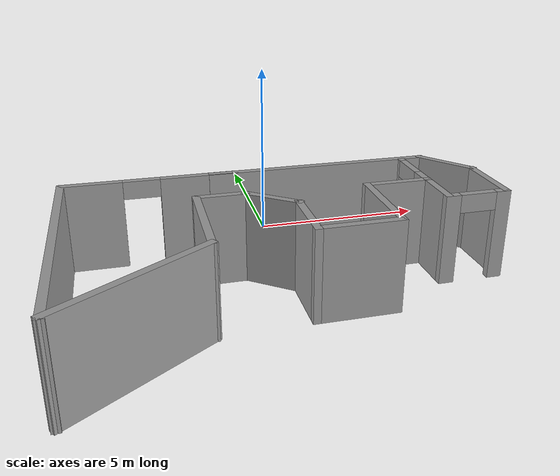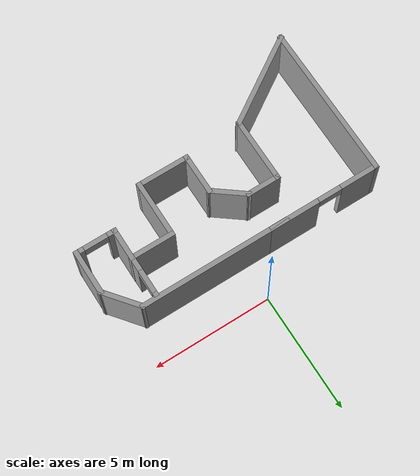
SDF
<?xml version='1.0'?>
<sdf version='1.4'>
  <model name='house_test'>
    <link name='Wall_0'>
      <collision name='Wall_0_Collision'>
        <geometry>
          <box>
            <size>6.42 0.2 2.5</size>
          </box>
        </geometry>
        <pose>0 0 1.25 0 -0 0</pose>
      </collision>
      <visual name='Wall_0_Visual'>
        <pose>0 0 1.25 0 -0 0</pose>
        <geometry>
          <box>
            <size>6.42 0.2 2.5</size>
          </box>
        </geometry>
        <material>
          <script>
            <uri>file://media/materials/scripts/gazebo.material</uri>
            <name>Gazebo/Grey</name>
          </script>
        </material>
      </visual>
      <velocity_decay>
        <linear>0</linear>
        <angular>0</angular>
      </velocity_decay>
      <pose>1.32 -1.61 0 0 -0 0</pose>
    </link>
    <link name='Wall_1'>
      <collision name='Wall_1_Collision'>
        <geometry>
          <box>
            <size>1.83049 0.2 2.5</size>
          </box>
        </geometry>
        <pose>0 0 1.25 0 -0 0</pose>
      </collision>
      <visual name='Wall_1_Visual'>
        <pose>0 0 1.25 0 -0 0</pose>
        <geometry>
          <box>
            <size>1.83049 0.2 2.5</size>
          </box>
        </geometry>
        <material>
          <script>
            <uri>file://media/materials/scripts/gazebo.material</uri>
            <name>Gazebo/Grey</name>
          </script>
        </material>
      </visual>
      <velocity_decay>
        <linear>0</linear>
        <angular>0</angular>
      </velocity_decay>
      <pose>4.935 -2.25 0 0 0 -0.90276</pose>
    </link>
    <link name='Wall_10'>
      <collision name='Wall_10_Collision'>
        <geometry>
          <box>
            <size>1.4808 0.2 2.5</size>
          </box>
        </geometry>
        <pose>0 0 1.25 0 -0 0</pose>
      </collision>
      <visual name='Wall_10_Visual'>
        <pose>0 0 1.25 0 -0 0</pose>
        <geometry>
          <box>
            <size>1.4808 0.2 2.5</size>
          </box>
        </geometry>
        <material>
          <script>
            <uri>file://media/materials/scripts/gazebo.material</uri>
            <name>Gazebo/Grey</name>
          </script>
        </material>
      </visual>
      <velocity_decay>
        <linear>0</linear>
        <angular>0</angular>
      </velocity_decay>
      <pose>-1.8069 -3.22937 0 0 -0 3.14159</pose>
    </link>
    <link name='Wall_11'>
      <collision name='Wall_11_Collision'>
        <geometry>
          <box>
            <size>2.85488 0.2 2.5</size>
          </box>
        </geometry>
        <pose>0 0 1.25 0 -0 0</pose>
      </collision>
      <visual name='Wall_11_Visual'>
        <pose>0 0 1.25 0 -0 0</pose>
        <geometry>
          <box>
            <size>2.85488 0.2 2.5</size>
          </box>
        </geometry>
        <material>
          <script>
            <uri>file://media/materials/scripts/gazebo.material</uri>
            <name>Gazebo/Grey</name>
          </script>
        </material>
      </visual>
      <velocity_decay>
        <linear>0</linear>
        <angular>0</angular>
      </velocity_decay>
      <pose>-2.4473 -4.55681 0 0 0 -1.5708</pose>
    </link>
    <link name='Wall_12'>
      <collision name='Wall_12_Collision'>
        <geometry>
          <box>
            <size>4.25102 0.2 2.5</size>
          </box>
        </geometry>
        <pose>0 0 1.25 0 -0 0</pose>
      </collision>
      <visual name='Wall_12_Visual'>
        <pose>0 0 1.25 0 -0 0</pose>
        <geometry>
          <box>
            <size>4.25102 0.2 2.5</size>
          </box>
        </geometry>
        <material>
          <script>
            <uri>file://media/materials/scripts/gazebo.material</uri>
            <name>Gazebo/Grey</name>
          </script>
        </material>
      </visual>
      <velocity_decay>
        <linear>0</linear>
        <angular>0</angular>
      </velocity_decay>
      <pose>-4.13682 -7.00149 0 0 0 -2.55733</pose>
    </link>
    <link name='Wall_13'>
      <collision name='Wall_13_Collision'>
        <geometry>
          <box>
            <size>6.71335 0.2 2.5</size>
          </box>
        </geometry>
        <pose>0 0 1.25 0 -0 0</pose>
      </collision>
      <visual name='Wall_13_Visual'>
        <pose>0 0 1.25 0 -0 0</pose>
        <geometry>
          <box>
            <size>6.71335 0.2 2.5</size>
          </box>
        </geometry>
        <material>
          <script>
            <uri>file://media/materials/scripts/gazebo.material</uri>
            <name>Gazebo/Grey</name>
          </script>
        </material>
      </visual>
      <velocity_decay>
        <linear>0</linear>
        <angular>0</angular>
      </velocity_decay>
      <pose>-5.82633 -4.86205 0 0 -0 1.5708</pose>
    </link>
    <link name='Wall_14'>
      <pose>-3.50013 -1.60538 0 0 -0 0</pose>
      <visual name='Wall_14_Visual_0'>
        <pose>-1.57435 0 1.25 0 -0 0</pose>
        <geometry>
          <box>
            <size>1.70369 0.2 2.5</size>
          </box>
        </geometry>
        <material>
          <script>
            <uri>file://media/materials/scripts/gazebo.material</uri>
            <name>Gazebo/Grey</name>
          </script>
        </material>
      </visual>
      <collision name='Wall_14_Collision_0'>
        <geometry>
          <box>
            <size>1.70369 0.2 2.5</size>
          </box>
        </geometry>
        <pose>-1.57435 0 1.25 0 -0 0</pose>
      </collision>
      <visual name='Wall_14_Visual_1'>
        <pose>1.35184 0 1.25 0 -0 0</pose>
        <geometry>
          <box>
            <size>2.1487 0.2 2.5</size>
          </box>
        </geometry>
        <material>
          <script>
            <uri>file://media/materials/scripts/gazebo.material</uri>
            <name>Gazebo/Grey</name>
          </script>
        </material>
      </visual>
      <collision name='Wall_14_Collision_1'>
        <geometry>
          <box>
            <size>2.1487 0.2 2.5</size>
          </box>
        </geometry>
        <pose>1.35184 0 1.25 0 -0 0</pose>
      </collision>
      <visual name='Wall_14_Visual_2'>
        <pose>-0.222506 0 2.25 0 -0 0</pose>
        <geometry>
          <box>
            <size>1 0.2 0.5</size>
          </box>
        </geometry>
        <material>
          <script>
            <uri>file://media/materials/scripts/gazebo.material</uri>
            <name>Gazebo/Grey</name>
          </script>
        </material>
      </visual>
      <collision name='Wall_14_Collision_2'>
        <geometry>
          <box>
            <size>1 0.2 0.5</size>
          </box>
        </geometry>
        <pose>-0.222506 0 2.25 0 -0 0</pose>
      </collision>
    </link>
    <link name='Wall_16'>
      <pose>3.80255 -2.48806 0 0 -0 1.5708</pose>
      <visual name='Wall_16_Visual_0'>
        <pose>-0.590607 0 1.25 0 -0 0</pose>
        <geometry>
          <box>
            <size>0.497668 0.2 2.5</size>
          </box>
        </geometry>
        <material>
          <script>
            <uri>file://media/materials/scripts/gazebo.material</uri>
            <name>Gazebo/Grey</name>
          </script>
        </material>
      </visual>
      <collision name='Wall_16_Collision_0'>
        <geometry>
          <box>
            <size>0.497668 0.2 2.5</size>
          </box>
        </geometry>
        <pose>-0.590607 0 1.25 0 -0 0</pose>
      </collision>
      <visual name='Wall_16_Visual_1'>
        <pose>0.748834 0 1.25 0 -0 0</pose>
        <geometry>
          <box>
            <size>0.181214 0.2 2.5</size>
          </box>
        </geometry>
        <material>
          <script>
            <uri>file://media/materials/scripts/gazebo.material</uri>
            <name>Gazebo/Grey</name>
          </script>
        </material>
      </visual>
      <collision name='Wall_16_Collision_1'>
        <geometry>
          <box>
            <size>0.181214 0.2 2.5</size>
          </box>
        </geometry>
        <pose>0.748834 0 1.25 0 -0 0</pose>
      </collision>
      <visual name='Wall_16_Visual_2'>
        <pose>0.158227 0 2.25 0 -0 0</pose>
        <geometry>
          <box>
            <size>1 0.2 0.5</size>
          </box>
        </geometry>
        <material>
          <script>
            <uri>file://media/materials/scripts/gazebo.material</uri>
            <name>Gazebo/Grey</name>
          </script>
        </material>
      </visual>
      <collision name='Wall_16_Collision_2'>
        <geometry>
          <box>
            <size>1 0.2 0.5</size>
          </box>
        </geometry>
        <pose>0.158227 0 2.25 0 -0 0</pose>
      </collision>
    </link>
    <link name='Wall_2'>
      <collision name='Wall_2_Collision'>
        <geometry>
          <box>
            <size>1.97 0.2 2.5</size>
          </box>
        </geometry>
        <pose>0 0 1.25 0 -0 0</pose>
      </collision>
      <visual name='Wall_2_Visual'>
        <pose>0 0 1.25 0 -0 0</pose>
        <geometry>
          <box>
            <size>1.97 0.2 2.5</size>
          </box>
        </geometry>
        <material>
          <script>
            <uri>file://media/materials/scripts/gazebo.material</uri>
            <name>Gazebo/Grey</name>
          </script>
        </material>
      </visual>
      <velocity_decay>
        <linear>0</linear>
        <angular>0</angular>
      </velocity_decay>
      <pose>5.44 -3.775 0 0 0 -1.5708</pose>
    </link>
    <link name='Wall_3'>
      <pose>4.625 -4.66 0 0 -0 3.14159</pose>
      <visual name='Wall_3_Visual_0'>
        <pose>-0.710295 0 1.25 0 -0 0</pose>
        <geometry>
          <box>
            <size>0.40941 0.2 2.5</size>
          </box>
        </geometry>
        <material>
          <script>
            <uri>file://media/materials/scripts/gazebo.material</uri>
            <name>Gazebo/Grey</name>
          </script>
        </material>
      </visual>
      <collision name='Wall_3_Collision_0'>
        <geometry>
          <box>
            <size>0.40941 0.2 2.5</size>
          </box>
        </geometry>
        <pose>-0.710295 0 1.25 0 -0 0</pose>
      </collision>
      <visual name='Wall_3_Visual_1'>
        <pose>0.704705 0 1.25 0 -0 0</pose>
        <geometry>
          <box>
            <size>0.42059 0.2 2.5</size>
          </box>
        </geometry>
        <material>
          <script>
            <uri>file://media/materials/scripts/gazebo.material</uri>
            <name>Gazebo/Grey</name>
          </script>
        </material>
      </visual>
      <collision name='Wall_3_Collision_1'>
        <geometry>
          <box>
            <size>0.42059 0.2 2.5</size>
          </box>
        </geometry>
        <pose>0.704705 0 1.25 0 -0 0</pose>
      </collision>
      <visual name='Wall_3_Visual_2'>
        <pose>-0.00559 0 2.25 0 -0 0</pose>
        <geometry>
          <box>
            <size>1 0.2 0.5</size>
          </box>
        </geometry>
        <material>
          <script>
            <uri>file://media/materials/scripts/gazebo.material</uri>
            <name>Gazebo/Grey</name>
          </script>
        </material>
      </visual>
      <collision name='Wall_3_Collision_2'>
        <geometry>
          <box>
            <size>1 0.2 0.5</size>
          </box>
        </geometry>
        <pose>-0.00559 0 2.25 0 -0 0</pose>
      </collision>
    </link>
    <link name='Wall_4'>
      <collision name='Wall_4_Collision'>
        <geometry>
          <box>
            <size>1.44557 0.2 2.5</size>
          </box>
        </geometry>
        <pose>0 0 1.25 0 -0 0</pose>
      </collision>
      <visual name='Wall_4_Visual'>
        <pose>0 0 1.25 0 -0 0</pose>
        <geometry>
          <box>
            <size>1.44557 0.2 2.5</size>
          </box>
        </geometry>
        <material>
          <script>
            <uri>file://media/materials/scripts/gazebo.material</uri>
            <name>Gazebo/Grey</name>
          </script>
        </material>
      </visual>
      <velocity_decay>
        <linear>0</linear>
        <angular>0</angular>
      </velocity_decay>
      <pose>3.81 -4.03721 0 0 -0 1.5708</pose>
    </link>
    <link name='Wall_5'>
      <collision name='Wall_5_Collision'>
        <geometry>
          <box>
            <size>1.92334 0.2 2.5</size>
          </box>
        </geometry>
        <pose>0 0 1.25 0 -0 0</pose>
      </collision>
      <visual name='Wall_5_Visual'>
        <pose>0 0 1.25 0 -0 0</pose>
        <geometry>
          <box>
            <size>1.92334 0.2 2.5</size>
          </box>
        </geometry>
        <material>
          <script>
            <uri>file://media/materials/scripts/gazebo.material</uri>
            <name>Gazebo/Grey</name>
          </script>
        </material>
      </visual>
      <velocity_decay>
        <linear>0</linear>
        <angular>0</angular>
      </velocity_decay>
      <pose>2.94833 -3.41443 0 0 -0 3.14159</pose>
    </link>
    <link name='Wall_6'>
      <collision name='Wall_6_Collision'>
        <geometry>
          <box>
            <size>2.52618 0.2 2.5</size>
          </box>
        </geometry>
        <pose>0 0 1.25 0 -0 0</pose>
      </collision>
      <visual name='Wall_6_Visual'>
        <pose>0 0 1.25 0 -0 0</pose>
        <geometry>
          <box>
            <size>2.52618 0.2 2.5</size>
          </box>
        </geometry>
        <material>
          <script>
            <uri>file://media/materials/scripts/gazebo.material</uri>
            <name>Gazebo/Grey</name>
          </script>
        </material>
      </visual>
      <velocity_decay>
        <linear>0</linear>
        <angular>0</angular>
      </velocity_decay>
      <pose>2.08666 -4.57752 0 0 0 -1.5708</pose>
    </link>
    <link name='Wall_7'>
      <collision name='Wall_7_Collision'>
        <geometry>
          <box>
            <size>2.28132 0.2 2.5</size>
          </box>
        </geometry>
        <pose>0 0 1.25 0 -0 0</pose>
      </collision>
      <visual name='Wall_7_Visual'>
        <pose>0 0 1.25 0 -0 0</pose>
        <geometry>
          <box>
            <size>2.28132 0.2 2.5</size>
          </box>
        </geometry>
        <material>
          <script>
            <uri>file://media/materials/scripts/gazebo.material</uri>
            <name>Gazebo/Grey</name>
          </script>
        </material>
      </visual>
      <velocity_decay>
        <linear>0</linear>
        <angular>0</angular>
      </velocity_decay>
      <pose>1.046 -5.74061 0 0 -0 3.14159</pose>
    </link>
    <link name='Wall_8'>
      <collision name='Wall_8_Collision'>
        <geometry>
          <box>
            <size>1.80909 0.2 2.5</size>
          </box>
        </geometry>
        <pose>0 0 1.25 0 -0 0</pose>
      </collision>
      <visual name='Wall_8_Visual'>
        <pose>0 0 1.25 0 -0 0</pose>
        <geometry>
          <box>
            <size>1.80909 0.2 2.5</size>
          </box>
        </geometry>
        <material>
          <script>
            <uri>file://media/materials/scripts/gazebo.material</uri>
            <name>Gazebo/Grey</name>
          </script>
        </material>
      </visual>
      <velocity_decay>
        <linear>0</linear>
        <angular>0</angular>
      </velocity_decay>
      <pose>0.005344 -4.93607 0 0 -0 1.5708</pose>
    </link>
    <link name='Wall_9'>
      <collision name='Wall_9_Collision'>
        <geometry>
          <box>
            <size>1.67888 0.2 2.5</size>
          </box>
        </geometry>
        <pose>0 0 1.25 0 -0 0</pose>
      </collision>
      <visual name='Wall_9_Visual'>
        <pose>0 0 1.25 0 -0 0</pose>
        <geometry>
          <box>
            <size>1.67888 0.2 2.5</size>
          </box>
        </geometry>
        <material>
          <script>
            <uri>file://media/materials/scripts/gazebo.material</uri>
            <name>Gazebo/Grey</name>
          </script>
        </material>
      </visual>
      <velocity_decay>
        <linear>0</linear>
        <angular>0</angular>
      </velocity_decay>
      <pose>-0.580578 -3.68044 0 0 -0 2.4855</pose>
    </link>
    <static>1</static>
  </model>
</sdf>
